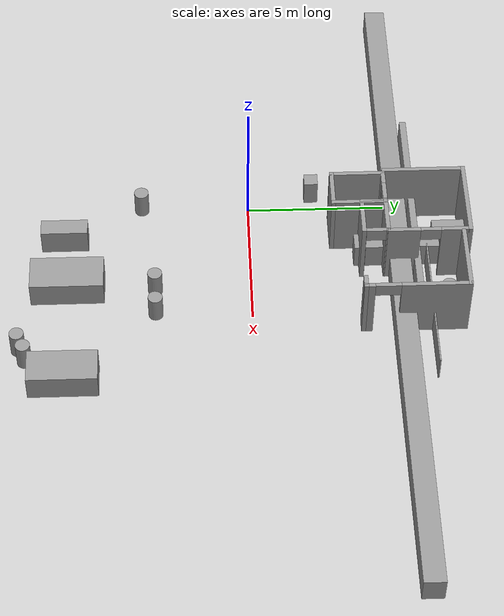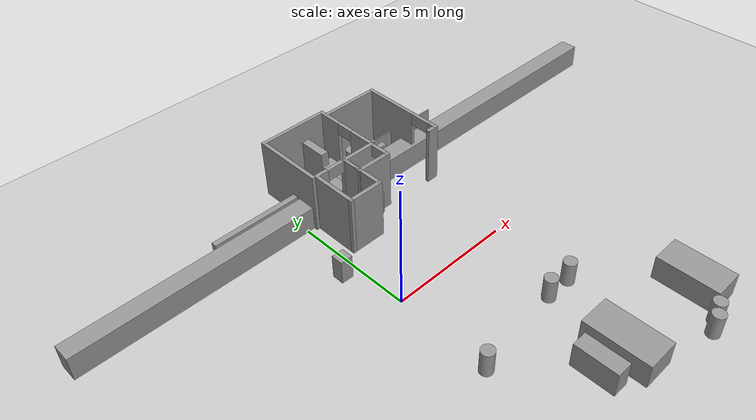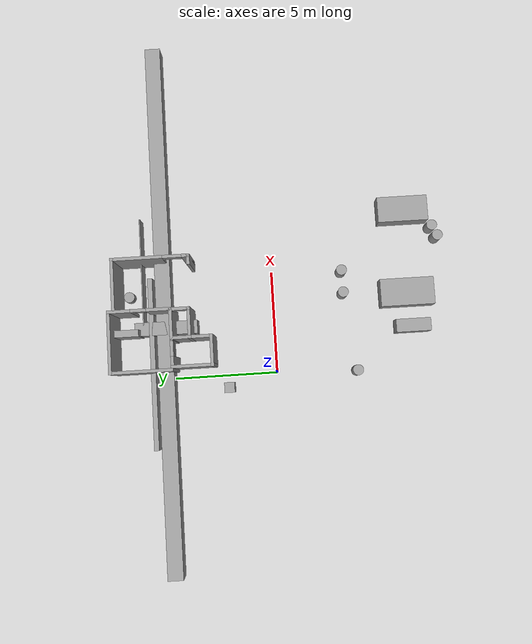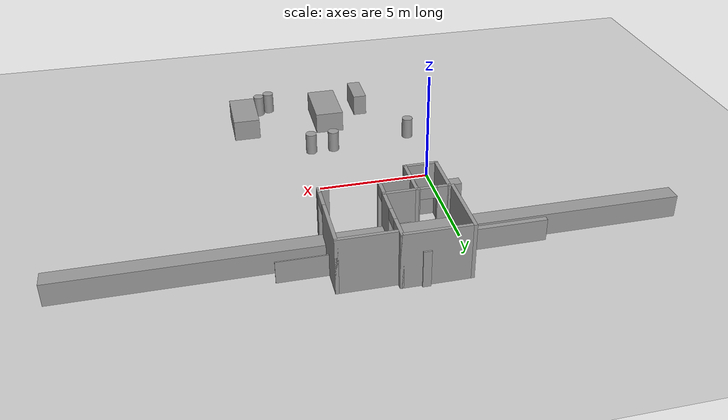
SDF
<sdf version="1.9">
 <world name="default">
  <model name="ground_plane">
   <static>true</static>
   <link name="link">
    <collision name="collision">
     <geometry><plane><normal>0 0 1</normal><size>100 100</size></plane></geometry>
     <surface><friction><ode><mu>100</mu><mu2>50</mu2></ode></friction></surface>
    </collision>
    <visual name="visual">
     <cast_shadows>false</cast_shadows>
     <geometry><plane><normal>0 0 1</normal><size>100 100</size></plane></geometry>
     <material>
      <script><uri>file://media/materials/scripts/gazebo.material</uri><name>Gazebo/Grey</name></script>
     </material>
    </visual>
   </link>
  </model>
  <model name="cma_dispensa">
   <pose>2.5258400000000001 4.4011899999999997 0 0 0 0</pose>
   <link name="Wall_5">
    <collision name="Wall_5_Collision">
     <geometry><box><size>1 0.14999999999999999 2.5</size></box></geometry>
     <pose>0 0 1.25 0 0 0</pose>
    </collision>
    <visual name="Wall_5_Visual">
     <pose>0 0 1.25 0 0 0</pose>
     <geometry><box><size>1 0.14999999999999999 2.5</size></box></geometry>
     <material>
      <script><uri>file://media/materials/scripts/gazebo.material</uri><name>Gazebo/Grey</name></script>
      <ambient>1 1 1 1</ambient>
     </material>
    </visual>
    <pose>-0.67500000000000004 0 0 0 0 1.5708</pose>
   </link>
   <link name="Wall_6">
    <collision name="Wall_6_Collision">
     <geometry><box><size>1.5 0.14999999999999999 2.5</size></box></geometry>
     <pose>0 0 1.25 0 0 0</pose>
    </collision>
    <visual name="Wall_6_Visual">
     <pose>0 0 1.25 0 0 0</pose>
     <geometry><box><size>1.5 0.14999999999999999 2.5</size></box></geometry>
     <material>
      <script><uri>file://media/materials/scripts/gazebo.material</uri><name>Gazebo/Grey</name></script>
      <ambient>1 1 1 1</ambient>
     </material>
    </visual>
    <pose>0 0.42499999999999999 0 0 0 0</pose>
   </link>
   <link name="Wall_7">
    <pose>0.67500000000000004 0 0 0 0 -1.5708</pose>
    <visual name="Wall_7_Visual_0">
     <pose>-0.42749999999999999 0 1.25 0 0 0</pose>
     <geometry><box><size>0.14499999999999999 0.14999999999999999 2.5</size></box></geometry>
     <material>
      <script><uri>file://media/materials/scripts/gazebo.material</uri><name>Gazebo/Grey</name></script>
      <ambient>1 1 1 1</ambient>
     </material>
    </visual>
    <collision name="Wall_7_Collision_0">
     <geometry><box><size>0.14499999999999999 0.14999999999999999 2.5</size></box></geometry>
     <pose>-0.42749999999999999 0 1.25 0 0 0</pose>
    </collision>
    <visual name="Wall_7_Visual_1">
     <pose>0.42249999999999999 0 1.25 0 0 0</pose>
     <geometry><box><size>0.155 0.14999999999999999 2.5</size></box></geometry>
     <material>
      <script><uri>file://media/materials/scripts/gazebo.material</uri><name>Gazebo/Grey</name></script>
      <ambient>1 1 1 1</ambient>
     </material>
    </visual>
    <collision name="Wall_7_Collision_1">
     <geometry><box><size>0.155 0.14999999999999999 2.5</size></box></geometry>
     <pose>0.42249999999999999 0 1.25 0 0 0</pose>
    </collision>
    <visual name="Wall_7_Visual_2">
     <pose>-0.0050000000000000001 0 2.25 0 0 0</pose>
     <geometry><box><size>0.69999999999999996 0.14999999999999999 0.5</size></box></geometry>
     <material>
      <script><uri>file://media/materials/scripts/gazebo.material</uri><name>Gazebo/Grey</name></script>
      <ambient>1 1 1 1</ambient>
     </material>
    </visual>
    <collision name="Wall_7_Collision_2">
     <geometry><box><size>0.69999999999999996 0.14999999999999999 0.5</size></box></geometry>
     <pose>-0.0050000000000000001 0 2.25 0 0 0</pose>
    </collision>
   </link>
   <link name="Wall_8">
    <collision name="Wall_8_Collision">
     <geometry><box><size>1.5 0.14999999999999999 2.5</size></box></geometry>
     <pose>0 0 1.25 0 0 0</pose>
    </collision>
    <visual name="Wall_8_Visual">
     <pose>0 0 1.25 0 0 0</pose>
     <geometry><box><size>1.5 0.14999999999999999 2.5</size></box></geometry>
     <material>
      <script><uri>file://media/materials/scripts/gazebo.material</uri><name>Gazebo/Grey</name></script>
      <ambient>1 1 1 1</ambient>
     </material>
    </visual>
    <pose>0 -0.42499999999999999 0 0 0 3.1415899999999999</pose>
   </link>
   <static>true</static>
  </model>
  <model name="cma_banheiro_e">
   <pose>1.1835800000000001 3.89879 0 0 0 0</pose>
   <link name="Wall_10">
    <collision name="Wall_10_Collision">
     <geometry><box><size>1.5 0.14999999999999999 2.5</size></box></geometry>
     <pose>0 0 1.25 0 0 0</pose>
    </collision>
    <visual name="Wall_10_Visual">
     <pose>0 0 1.25 0 0 0</pose>
     <geometry><box><size>1.5 0.14999999999999999 2.5</size></box></geometry>
     <material>
      <script><uri>file://media/materials/scripts/gazebo.material</uri><name>Gazebo/Grey</name></script>
      <ambient>1 1 1 1</ambient>
     </material>
    </visual>
    <pose>0 -0.92500000000000004 0 0 0 3.1415899999999999</pose>
   </link>
   <link name="Wall_11">
    <collision name="Wall_11_Collision">
     <geometry><box><size>2 0.14999999999999999 2.5</size></box></geometry>
     <pose>0 0 1.25 0 0 0</pose>
    </collision>
    <visual name="Wall_11_Visual">
     <pose>0 0 1.25 0 0 0</pose>
     <geometry><box><size>2 0.14999999999999999 2.5</size></box></geometry>
     <material>
      <script><uri>file://media/materials/scripts/gazebo.material</uri><name>Gazebo/Grey</name></script>
      <ambient>1 1 1 1</ambient>
     </material>
    </visual>
    <pose>-0.67500000000000004 0 0 0 0 1.5708</pose>
   </link>
   <link name="Wall_12">
    <pose>0 0.92500000000000004 0 0 0 0</pose>
    <visual name="Wall_12_Visual_0">
     <pose>-0.46250000000000002 0 1.25 0 0 0</pose>
     <geometry><box><size>0.57499999999999996 0.14999999999999999 2.5</size></box></geometry>
     <material>
      <script><uri>file://media/materials/scripts/gazebo.material</uri><name>Gazebo/Grey</name></script>
      <ambient>1 1 1 1</ambient>
     </material>
    </visual>
    <collision name="Wall_12_Collision_0">
     <geometry><box><size>0.57499999999999996 0.14999999999999999 2.5</size></box></geometry>
     <pose>-0.46250000000000002 0 1.25 0 0 0</pose>
    </collision>
    <visual name="Wall_12_Visual_1">
     <pose>0.64749999999999996 0 1.25 0 0 0</pose>
     <geometry><box><size>0.20499999999999999 0.14999999999999999 2.5</size></box></geometry>
     <material>
      <script><uri>file://media/materials/scripts/gazebo.material</uri><name>Gazebo/Grey</name></script>
      <ambient>1 1 1 1</ambient>
     </material>
    </visual>
    <collision name="Wall_12_Collision_1">
     <geometry><box><size>0.20499999999999999 0.14999999999999999 2.5</size></box></geometry>
     <pose>0.64749999999999996 0 1.25 0 0 0</pose>
    </collision>
    <visual name="Wall_12_Visual_2">
     <pose>0.185 0 2.25 0 0 0</pose>
     <geometry><box><size>0.71999999999999997 0.14999999999999999 0.5</size></box></geometry>
     <material>
      <script><uri>file://media/materials/scripts/gazebo.material</uri><name>Gazebo/Grey</name></script>
      <ambient>1 1 1 1</ambient>
     </material>
    </visual>
    <collision name="Wall_12_Collision_2">
     <geometry><box><size>0.71999999999999997 0.14999999999999999 0.5</size></box></geometry>
     <pose>0.185 0 2.25 0 0 0</pose>
    </collision>
   </link>
   <link name="Wall_13">
    <collision name="Wall_13_Collision">
     <geometry><box><size>2 0.14999999999999999 2.5</size></box></geometry>
     <pose>0 0 1.25 0 0 0</pose>
    </collision>
    <visual name="Wall_13_Visual">
     <pose>0 0 1.25 0 0 0</pose>
     <geometry><box><size>2 0.14999999999999999 2.5</size></box></geometry>
     <material>
      <script><uri>file://media/materials/scripts/gazebo.material</uri><name>Gazebo/Grey</name></script>
      <ambient>1 1 1 1</ambient>
     </material>
    </visual>
    <pose>0.67500000000000004 0 0 0 0 -1.5708</pose>
   </link>
   <static>true</static>
  </model>
  <model name="cma_qe">
   <pose>1.79922 6.3014200000000002 0 0 0 0</pose>
   <link name="Wall_15">
    <collision name="Wall_15_Collision">
     <geometry><box><size>3 0.14999999999999999 2.5</size></box></geometry>
     <pose>0 0 1.25 0 0 0</pose>
    </collision>
    <visual name="Wall_15_Visual">
     <pose>0 0 1.25 0 0 0</pose>
     <geometry><box><size>3 0.14999999999999999 2.5</size></box></geometry>
     <material>
      <script><uri>file://media/materials/scripts/gazebo.material</uri><name>Gazebo/Grey</name></script>
      <ambient>1 1 1 1</ambient>
     </material>
    </visual>
    <pose>-1.425 0 0 0 0 1.5708</pose>
   </link>
   <link name="Wall_16">
    <collision name="Wall_16_Collision">
     <geometry><box><size>3 0.14999999999999999 2.5</size></box></geometry>
     <pose>0 0 1.25 0 0 0</pose>
    </collision>
    <visual name="Wall_16_Visual">
     <pose>0 0 1.25 0 0 0</pose>
     <geometry><box><size>3 0.14999999999999999 2.5</size></box></geometry>
     <material>
      <script><uri>file://media/materials/scripts/gazebo.material</uri><name>Gazebo/Grey</name></script>
      <ambient>1 1 1 1</ambient>
     </material>
    </visual>
    <pose>0 1.425 0 0 0 0</pose>
   </link>
   <link name="Wall_17">
    <pose>1.425 0 0 0 0 -1.5708</pose>
    <visual name="Wall_17_Visual_0">
     <pose>-0.94499999999999995 0 1.25 0 0 0</pose>
     <geometry><box><size>1.1100000000000001 0.14999999999999999 2.5</size></box></geometry>
     <material>
      <script><uri>file://media/materials/scripts/gazebo.material</uri><name>Gazebo/Grey</name></script>
      <ambient>1 1 1 1</ambient>
     </material>
    </visual>
    <collision name="Wall_17_Collision_0">
     <geometry><box><size>1.1100000000000001 0.14999999999999999 2.5</size></box></geometry>
     <pose>-0.94499999999999995 0 1.25 0 0 0</pose>
    </collision>
    <visual name="Wall_17_Visual_1">
     <pose>0.92000000000000004 0 1.25 0 0 0</pose>
     <geometry><box><size>1.1599999999999999 0.14999999999999999 2.5</size></box></geometry>
     <material>
      <script><uri>file://media/materials/scripts/gazebo.material</uri><name>Gazebo/Grey</name></script>
      <ambient>1 1 1 1</ambient>
     </material>
    </visual>
    <collision name="Wall_17_Collision_1">
     <geometry><box><size>1.1599999999999999 0.14999999999999999 2.5</size></box></geometry>
     <pose>0.92000000000000004 0 1.25 0 0 0</pose>
    </collision>
    <visual name="Wall_17_Visual_2">
     <pose>-0.025000000000000001 0 2.25 0 0 0</pose>
     <geometry><box><size>0.72999999999999998 0.14999999999999999 0.5</size></box></geometry>
     <material>
      <script><uri>file://media/materials/scripts/gazebo.material</uri><name>Gazebo/Grey</name></script>
      <ambient>1 1 1 1</ambient>
     </material>
    </visual>
    <collision name="Wall_17_Collision_2">
     <geometry><box><size>0.72999999999999998 0.14999999999999999 0.5</size></box></geometry>
     <pose>-0.025000000000000001 0 2.25 0 0 0</pose>
    </collision>
   </link>
   <static>true</static>
  </model>
  <model name="cma_area2">
   <pose>4.5227500000000003 5.6786199999999996 0 0 0 0</pose>
   <link name="Wall_23">
    <collision name="Wall_23_Collision">
     <geometry><box><size>2.5 0.14999999999999999 2.5</size></box></geometry>
     <pose>0 0 1.25 0 0 0</pose>
    </collision>
    <visual name="Wall_23_Visual">
     <pose>0 0 1.25 0 0 0</pose>
     <geometry><box><size>2.5 0.14999999999999999 2.5</size></box></geometry>
     <material>
      <script><uri>file://media/materials/scripts/gazebo.material</uri><name>Gazebo/Grey</name></script>
      <ambient>1 1 1 1</ambient>
     </material>
    </visual>
    <pose>0 1.8 0 0 0 0</pose>
   </link>
   <link name="Wall_24">
    <pose>1.175 0 0 0 0 -1.5708</pose>
    <visual name="Wall_24_Visual_0">
     <pose>-0.64249999999999996 0 1.25 0 0 0</pose>
     <geometry><box><size>2.4649999999999999 0.14999999999999999 2.5</size></box></geometry>
     <material>
      <script><uri>file://media/materials/scripts/gazebo.material</uri><name>Gazebo/Grey</name></script>
      <ambient>1 1 1 1</ambient>
     </material>
    </visual>
    <collision name="Wall_24_Collision_0">
     <geometry><box><size>2.4649999999999999 0.14999999999999999 2.5</size></box></geometry>
     <pose>-0.64249999999999996 0 1.25 0 0 0</pose>
    </collision>
    <visual name="Wall_24_Visual_1">
     <pose>1.6825000000000001 0 1.25 0 0 0</pose>
     <geometry><box><size>0.38500000000000001 0.14999999999999999 2.5</size></box></geometry>
     <material>
      <script><uri>file://media/materials/scripts/gazebo.material</uri><name>Gazebo/Grey</name></script>
      <ambient>1 1 1 1</ambient>
     </material>
    </visual>
    <collision name="Wall_24_Collision_1">
     <geometry><box><size>0.38500000000000001 0.14999999999999999 2.5</size></box></geometry>
     <pose>1.6825000000000001 0 1.25 0 0 0</pose>
    </collision>
    <visual name="Wall_24_Visual_2">
     <pose>1.04 0 2.25 0 0 0</pose>
     <geometry><box><size>0.90000000000000002 0.14999999999999999 0.5</size></box></geometry>
     <material>
      <script><uri>file://media/materials/scripts/gazebo.material</uri><name>Gazebo/Grey</name></script>
      <ambient>1 1 1 1</ambient>
     </material>
    </visual>
    <collision name="Wall_24_Collision_2">
     <geometry><box><size>0.90000000000000002 0.14999999999999999 0.5</size></box></geometry>
     <pose>1.04 0 2.25 0 0 0</pose>
    </collision>
   </link>
   <link name="Wall_25">
    <collision name="Wall_25_Collision">
     <geometry><box><size>0.5 0.14999999999999999 2.5</size></box></geometry>
     <pose>0 0 1.25 0 0 0</pose>
    </collision>
    <visual name="Wall_25_Visual">
     <pose>0 0 1.25 0 0 0</pose>
     <geometry><box><size>0.5 0.14999999999999999 2.5</size></box></geometry>
     <material>
      <script><uri>file://media/materials/scripts/gazebo.material</uri><name>Gazebo/Grey</name></script>
      <ambient>1 1 1 1</ambient>
     </material>
    </visual>
    <pose>1 -1.8 0 0 0 3.1415899999999999</pose>
   </link>
   <static>true</static>
  </model>
  <model name="cma_gaveteiro">
   <link name="link_0">
    <pose>0 3.9999999999999998e-06 0 0 0 0</pose>
    <inertial>
     <mass>0.245086</mass>
     <inertia>
      <ixx>0.025418</ixx>
      <ixy>0</ixy>
      <ixz>0</ixz>
      <iyy>0.025441100000000001</iyy>
      <iyz>0</iyz>
      <izz>0.010011300000000001</izz>
     </inertia>
    </inertial>
    <visual name="visual">
     <geometry><box><size>0.49565700000000001 0.49449100000000001 1</size></box></geometry>
     <material>
      <lighting>true</lighting>
      <script><uri>file://media/materials/scripts/gazebo.material</uri><name>Gazebo/Grey</name></script>
      <ambient>0.300000012 0.300000012 0.300000012 1</ambient>
      <diffuse>0.699999988 0.699999988 0.699999988 1</diffuse>
      <specular>0.00999999978 0.00999999978 0.00999999978 1</specular>
      <emissive>0 0 0 1</emissive>
     </material>
    </visual>
    <collision name="collision">
     <geometry><box><size>0.49565700000000001 0.49449100000000001 1</size></box></geometry>
     <surface>
      <friction>
       <ode><mu>1</mu><mu2>1</mu2><fdir1>0 0 0</fdir1><slip1>0</slip1><slip2>0</slip2></ode>
       <torsional>
        <coefficient>1</coefficient>
        <patch_radius>0</patch_radius>
        <surface_radius>0</surface_radius>
        <use_patch_radius>true</use_patch_radius>
        <ode><slip>0</slip></ode>
       </torsional>
      </friction>
      <bounce><restitution_coefficient>0</restitution_coefficient><threshold>1000000</threshold></bounce>
      <contact>
       <collide_without_contact>false</collide_without_contact>
       <collide_without_contact_bitmask>1</collide_without_contact_bitmask>
       <collide_bitmask>1</collide_bitmask>
       <ode>
        <soft_cfm>0</soft_cfm>
        <soft_erp>0.20000000000000001</soft_erp>
        <kp>10000000000000</kp>
        <kd>1</kd>
        <max_vel>0.01</max_vel>
        <min_depth>0</min_depth>
       </ode>
       <bullet>
        <split_impulse>true</split_impulse>
        <split_impulse_penetration_threshold>-0.01</split_impulse_penetration_threshold>
        <soft_cfm>0</soft_cfm>
        <soft_erp>0.20000000000000001</soft_erp>
        <kp>10000000000000</kp>
        <kd>1</kd>
       </bullet>
      </contact>
     </surface>
    </collision>
   </link>
   <static>false</static>
   <pose>-0.59198799999999996 2.3262 0.5 -9.9999999999999974e-07 -9.9999999999999995e-07 0.00048399999999999995</pose>
  </model>
  <model name="cma_sofa_ch2">
   <link name="link_0">
    <pose>7.5415200000000002 -9.0606100000000005 0.5 0 0 0</pose>
    <inertial>
     <mass>3.05287</mass>
     <inertia>
      <ixx>1.79053</ixx>
      <ixy>0</ixy>
      <ixz>0</ixz>
      <iyy>0.64708900000000003</iyy>
      <iyz>0</iyz>
      <izz>1.9288099999999999</izz>
     </inertia>
    </inertial>
    <visual name="visual">
     <geometry><box><size>1.2423500000000001 2.45729 1</size></box></geometry>
     <material>
      <lighting>true</lighting>
      <script><uri>file://media/materials/scripts/gazebo.material</uri><name>Gazebo/Grey</name></script>
      <ambient>0.300000012 0.300000012 0.300000012 1</ambient>
      <diffuse>0.699999988 0.699999988 0.699999988 1</diffuse>
      <specular>0.00999999978 0.00999999978 0.00999999978 1</specular>
      <emissive>0 0 0 1</emissive>
     </material>
    </visual>
    <collision name="collision">
     <geometry><box><size>1.2423500000000001 2.45729 1</size></box></geometry>
     <surface>
      <friction>
       <ode><mu>1</mu><mu2>1</mu2><fdir1>0 0 0</fdir1><slip1>0</slip1><slip2>0</slip2></ode>
       <torsional>
        <coefficient>1</coefficient>
        <patch_radius>0</patch_radius>
        <surface_radius>0</surface_radius>
        <use_patch_radius>true</use_patch_radius>
        <ode><slip>0</slip></ode>
       </torsional>
      </friction>
      <bounce><restitution_coefficient>0</restitution_coefficient><threshold>1000000</threshold></bounce>
      <contact>
       <collide_without_contact>false</collide_without_contact>
       <collide_without_contact_bitmask>1</collide_without_contact_bitmask>
       <collide_bitmask>1</collide_bitmask>
       <ode>
        <soft_cfm>0</soft_cfm>
        <soft_erp>0.20000000000000001</soft_erp>
        <kp>10000000000000</kp>
        <kd>1</kd>
        <max_vel>0.01</max_vel>
        <min_depth>0</min_depth>
       </ode>
       <bullet>
        <split_impulse>true</split_impulse>
        <split_impulse_penetration_threshold>-0.01</split_impulse_penetration_threshold>
        <soft_cfm>0</soft_cfm>
        <soft_erp>0.20000000000000001</soft_erp>
        <kp>10000000000000</kp>
        <kd>1</kd>
       </bullet>
      </contact>
     </surface>
    </collision>
   </link>
   <model name="cma_armarioL">
    <link name="link_0">
     <pose>3.6622599999999998 -6.1673499999999999 0.5 0 0 0</pose>
     <inertial>
      <mass>1.0482100000000001</mass>
      <inertia>
       <ixx>0.33087299999999997</ixx>
       <ixy>0</ixy>
       <ixz>0</ixz>
       <iyy>0.121777</iyy>
       <iyz>0</iyz>
       <izz>0.277949</izz>
      </inertia>
     </inertial>
     <visual name="visual">
      <geometry><box><size>0.62779200000000002 1.6697200000000001 1</size></box></geometry>
      <material>
       <lighting>true</lighting>
       <script><uri>file://media/materials/scripts/gazebo.material</uri><name>Gazebo/Grey</name></script>
       <ambient>0.300000012 0.300000012 0.300000012 1</ambient>
       <diffuse>0.699999988 0.699999988 0.699999988 1</diffuse>
       <specular>0.00999999978 0.00999999978 0.00999999978 1</specular>
       <emissive>0 0 0 1</emissive>
      </material>
     </visual>
     <collision name="collision">
      <geometry><box><size>0.62779200000000002 1.6697200000000001 1</size></box></geometry>
      <surface>
       <friction>
        <ode><mu>1</mu><mu2>1</mu2><fdir1>0 0 0</fdir1><slip1>0</slip1><slip2>0</slip2></ode>
        <torsional>
         <coefficient>1</coefficient>
         <patch_radius>0</patch_radius>
         <surface_radius>0</surface_radius>
         <use_patch_radius>true</use_patch_radius>
         <ode><slip>0</slip></ode>
        </torsional>
       </friction>
       <bounce><restitution_coefficient>0</restitution_coefficient><threshold>1000000</threshold></bounce>
       <contact>
        <collide_without_contact>false</collide_without_contact>
        <collide_without_contact_bitmask>1</collide_without_contact_bitmask>
        <collide_bitmask>1</collide_bitmask>
        <ode>
         <soft_cfm>0</soft_cfm>
         <soft_erp>0.20000000000000001</soft_erp>
         <kp>10000000000000</kp>
         <kd>1</kd>
         <max_vel>0.01</max_vel>
         <min_depth>0</min_depth>
        </ode>
        <bullet>
         <split_impulse>true</split_impulse>
         <split_impulse_penetration_threshold>-0.01</split_impulse_penetration_threshold>
         <soft_cfm>0</soft_cfm>
         <soft_erp>0.20000000000000001</soft_erp>
         <kp>10000000000000</kp>
         <kd>1</kd>
        </bullet>
       </contact>
      </surface>
     </collision>
    </link>
    <static>false</static>
    <pose>-1.9180299999999999 -2.9201100000000002 0.5 0 0 0</pose>
   </model>
   <model name="cma_cesto">
    <link name="link_1">
     <pose>-0.32965899999999998 -1.55494 0 0 0 0</pose>
     <inertial>
      <mass>0.267897</mass>
      <inertia>
       <ixx>0.026810199999999999</ixx>
       <ixy>0</ixy>
       <ixz>0</ixz>
       <iyy>0.026810199999999999</iyy>
       <iyz>0</iyz>
       <izz>0.0089711099999999992</izz>
      </inertia>
     </inertial>
     <visual name="visual">
      <geometry><cylinder><radius>0.25879200000000002</radius><length>1</length></cylinder></geometry>
      <material>
       <lighting>true</lighting>
       <script><uri>file://media/materials/scripts/gazebo.material</uri><name>Gazebo/Grey</name></script>
       <ambient>0.300000012 0.300000012 0.300000012 1</ambient>
       <diffuse>0.699999988 0.699999988 0.699999988 1</diffuse>
       <specular>0.00999999978 0.00999999978 0.00999999978 1</specular>
       <emissive>0 0 0 1</emissive>
      </material>
     </visual>
     <collision name="collision">
      <geometry><cylinder><radius>0.25879200000000002</radius><length>1</length></cylinder></geometry>
      <surface>
       <friction>
        <ode><mu>1</mu><mu2>1</mu2><fdir1>0 0 0</fdir1><slip1>0</slip1><slip2>0</slip2></ode>
        <torsional>
         <coefficient>1</coefficient>
         <patch_radius>0</patch_radius>
         <surface_radius>0</surface_radius>
         <use_patch_radius>true</use_patch_radius>
         <ode><slip>0</slip></ode>
        </torsional>
       </friction>
       <bounce><restitution_coefficient>0</restitution_coefficient><threshold>1000000</threshold></bounce>
       <contact>
        <collide_without_contact>false</collide_without_contact>
        <collide_without_contact_bitmask>1</collide_without_contact_bitmask>
        <collide_bitmask>1</collide_bitmask>
        <ode>
         <soft_cfm>0</soft_cfm>
         <soft_erp>0.20000000000000001</soft_erp>
         <kp>10000000000000</kp>
         <kd>1</kd>
         <max_vel>0.01</max_vel>
         <min_depth>0</min_depth>
        </ode>
        <bullet>
         <split_impulse>true</split_impulse>
         <split_impulse_penetration_threshold>-0.01</split_impulse_penetration_threshold>
         <soft_cfm>0</soft_cfm>
         <soft_erp>0.20000000000000001</soft_erp>
         <kp>10000000000000</kp>
         <kd>1</kd>
        </bullet>
       </contact>
      </surface>
     </collision>
    </link>
    <static>false</static>
    <pose>6.9793500000000002 -8.8850899999999999 0.5 0 0 0</pose>
   </model>
   <model name="cma_cesto_0">
    <link name="link_1">
     <pose>-0.32965899999999998 -1.55494 0 0 0 0</pose>
     <inertial>
      <mass>0.267897</mass>
      <inertia>
       <ixx>0.026810199999999999</ixx>
       <ixy>0</ixy>
       <ixz>0</ixz>
       <iyy>0.026810199999999999</iyy>
       <iyz>0</iyz>
       <izz>0.0089711099999999992</izz>
      </inertia>
     </inertial>
     <visual name="visual">
      <geometry><cylinder><radius>0.25879200000000002</radius><length>1</length></cylinder></geometry>
      <material>
       <lighting>true</lighting>
       <script><uri>file://media/materials/scripts/gazebo.material</uri><name>Gazebo/Grey</name></script>
       <ambient>0.300000012 0.300000012 0.300000012 1</ambient>
       <diffuse>0.699999988 0.699999988 0.699999988 1</diffuse>
       <specular>0.00999999978 0.00999999978 0.00999999978 1</specular>
       <emissive>0 0 0 1</emissive>
      </material>
     </visual>
     <collision name="collision">
      <geometry><cylinder><radius>0.25879200000000002</radius><length>1</length></cylinder></geometry>
      <surface>
       <friction>
        <ode><mu>1</mu><mu2>1</mu2><fdir1>0 0 0</fdir1><slip1>0</slip1><slip2>0</slip2></ode>
        <torsional>
         <coefficient>1</coefficient>
         <patch_radius>0</patch_radius>
         <surface_radius>0</surface_radius>
         <use_patch_radius>true</use_patch_radius>
         <ode><slip>0</slip></ode>
        </torsional>
       </friction>
       <bounce><restitution_coefficient>0</restitution_coefficient><threshold>1000000</threshold></bounce>
       <contact>
        <collide_without_contact>false</collide_without_contact>
        <collide_without_contact_bitmask>1</collide_without_contact_bitmask>
        <collide_bitmask>1</collide_bitmask>
        <ode>
         <soft_cfm>0</soft_cfm>
         <soft_erp>0.20000000000000001</soft_erp>
         <kp>10000000000000</kp>
         <kd>1</kd>
         <max_vel>0.01</max_vel>
         <min_depth>0</min_depth>
        </ode>
        <bullet>
         <split_impulse>true</split_impulse>
         <split_impulse_penetration_threshold>-0.01</split_impulse_penetration_threshold>
         <soft_cfm>0</soft_cfm>
         <soft_erp>0.20000000000000001</soft_erp>
         <kp>10000000000000</kp>
         <kd>1</kd>
        </bullet>
       </contact>
      </surface>
     </collision>
    </link>
    <static>false</static>
    <pose>6.4663000000000004 -9.1192200000000003 0.5 0 0 0</pose>
   </model>
   <model name="cma_cesto_1">
    <link name="link_1">
     <pose>-0.32965899999999998 -1.55494 0 0 0 0</pose>
     <inertial>
      <mass>0.267897</mass>
      <inertia>
       <ixx>0.026810199999999999</ixx>
       <ixy>0</ixy>
       <ixz>0</ixz>
       <iyy>0.026810199999999999</iyy>
       <iyz>0</iyz>
       <izz>0.0089711099999999992</izz>
      </inertia>
     </inertial>
     <visual name="visual">
      <geometry><cylinder><radius>0.25879200000000002</radius><length>1</length></cylinder></geometry>
      <material>
       <lighting>true</lighting>
       <script><uri>file://media/materials/scripts/gazebo.material</uri><name>Gazebo/Grey</name></script>
       <ambient>0.300000012 0.300000012 0.300000012 1</ambient>
       <diffuse>0.699999988 0.699999988 0.699999988 1</diffuse>
       <specular>0.00999999978 0.00999999978 0.00999999978 1</specular>
       <emissive>0 0 0 1</emissive>
      </material>
     </visual>
     <collision name="collision">
      <geometry><cylinder><radius>0.25879200000000002</radius><length>1</length></cylinder></geometry>
      <surface>
       <friction>
        <ode><mu>1</mu><mu2>1</mu2><fdir1>0 0 0</fdir1><slip1>0</slip1><slip2>0</slip2></ode>
        <torsional>
         <coefficient>1</coefficient>
         <patch_radius>0</patch_radius>
         <surface_radius>0</surface_radius>
         <use_patch_radius>true</use_patch_radius>
         <ode><slip>0</slip></ode>
        </torsional>
       </friction>
       <bounce><restitution_coefficient>0</restitution_coefficient><threshold>1000000</threshold></bounce>
       <contact>
        <collide_without_contact>false</collide_without_contact>
        <collide_without_contact_bitmask>1</collide_without_contact_bitmask>
        <collide_bitmask>1</collide_bitmask>
        <ode>
         <soft_cfm>0</soft_cfm>
         <soft_erp>0.20000000000000001</soft_erp>
         <kp>10000000000000</kp>
         <kd>1</kd>
         <max_vel>0.01</max_vel>
         <min_depth>0</min_depth>
        </ode>
        <bullet>
         <split_impulse>true</split_impulse>
         <split_impulse_penetration_threshold>-0.01</split_impulse_penetration_threshold>
         <soft_cfm>0</soft_cfm>
         <soft_erp>0.20000000000000001</soft_erp>
         <kp>10000000000000</kp>
         <kd>1</kd>
        </bullet>
       </contact>
      </surface>
     </collision>
    </link>
    <static>false</static>
    <pose>0.091229000000000005 -4.78918 0.5 0 0 0</pose>
   </model>
   <model name="cma_cesto_2">
    <link name="link_1">
     <pose>-0.32965899999999998 -1.55494 0 0 0 0</pose>
     <inertial>
      <mass>0.267897</mass>
      <inertia>
       <ixx>0.026810199999999999</ixx>
       <ixy>0</ixy>
       <ixz>0</ixz>
       <iyy>0.026810199999999999</iyy>
       <iyz>0</iyz>
       <izz>0.0089711099999999992</izz>
      </inertia>
     </inertial>
     <visual name="visual">
      <geometry><cylinder><radius>0.25879200000000002</radius><length>1</length></cylinder></geometry>
      <material>
       <lighting>true</lighting>
       <script><uri>file://media/materials/scripts/gazebo.material</uri><name>Gazebo/Grey</name></script>
       <ambient>0.300000012 0.300000012 0.300000012 1</ambient>
       <diffuse>0.699999988 0.699999988 0.699999988 1</diffuse>
       <specular>0.00999999978 0.00999999978 0.00999999978 1</specular>
       <emissive>0 0 0 1</emissive>
      </material>
     </visual>
     <collision name="collision">
      <geometry><cylinder><radius>0.25879200000000002</radius><length>1</length></cylinder></geometry>
      <surface>
       <friction>
        <ode><mu>1</mu><mu2>1</mu2><fdir1>0 0 0</fdir1><slip1>0</slip1><slip2>0</slip2></ode>
        <torsional>
         <coefficient>1</coefficient>
         <patch_radius>0</patch_radius>
         <surface_radius>0</surface_radius>
         <use_patch_radius>true</use_patch_radius>
         <ode><slip>0</slip></ode>
        </torsional>
       </friction>
       <bounce><restitution_coefficient>0</restitution_coefficient><threshold>1000000</threshold></bounce>
       <contact>
        <collide_without_contact>false</collide_without_contact>
        <collide_without_contact_bitmask>1</collide_without_contact_bitmask>
        <collide_bitmask>1</collide_bitmask>
        <ode>
         <soft_cfm>0</soft_cfm>
         <soft_erp>0.20000000000000001</soft_erp>
         <kp>10000000000000</kp>
         <kd>1</kd>
         <max_vel>0.01</max_vel>
         <min_depth>0</min_depth>
        </ode>
        <bullet>
         <split_impulse>true</split_impulse>
         <split_impulse_penetration_threshold>-0.01</split_impulse_penetration_threshold>
         <soft_cfm>0</soft_cfm>
         <soft_erp>0.20000000000000001</soft_erp>
         <kp>10000000000000</kp>
         <kd>1</kd>
        </bullet>
       </contact>
      </surface>
     </collision>
    </link>
    <static>false</static>
    <pose>5.00434 -4.3001500000000004 0.5 0 0 0</pose>
   </model>
   <model name="cma_cesto_3">
    <link name="link_1">
     <pose>-0.32965899999999998 -1.55494 0 0 0 0</pose>
     <inertial>
      <mass>0.267897</mass>
      <inertia>
       <ixx>0.026810199999999999</ixx>
       <ixy>0</ixy>
       <ixz>0</ixz>
       <iyy>0.026810199999999999</iyy>
       <iyz>0</iyz>
       <izz>0.0089711099999999992</izz>
      </inertia>
     </inertial>
     <visual name="visual">
      <geometry><cylinder><radius>0.25879200000000002</radius><length>1</length></cylinder></geometry>
      <material>
       <lighting>true</lighting>
       <script><uri>file://media/materials/scripts/gazebo.material</uri><name>Gazebo/Grey</name></script>
       <ambient>0.300000012 0.300000012 0.300000012 1</ambient>
       <diffuse>0.699999988 0.699999988 0.699999988 1</diffuse>
       <specular>0.00999999978 0.00999999978 0.00999999978 1</specular>
       <emissive>0 0 0 1</emissive>
      </material>
     </visual>
     <collision name="collision">
      <geometry><cylinder><radius>0.25879200000000002</radius><length>1</length></cylinder></geometry>
      <surface>
       <friction>
        <ode><mu>1</mu><mu2>1</mu2><fdir1>0 0 0</fdir1><slip1>0</slip1><slip2>0</slip2></ode>
        <torsional>
         <coefficient>1</coefficient>
         <patch_radius>0</patch_radius>
         <surface_radius>0</surface_radius>
         <use_patch_radius>true</use_patch_radius>
         <ode><slip>0</slip></ode>
        </torsional>
       </friction>
       <bounce><restitution_coefficient>0</restitution_coefficient><threshold>1000000</threshold></bounce>
       <contact>
        <collide_without_contact>false</collide_without_contact>
        <collide_without_contact_bitmask>1</collide_without_contact_bitmask>
        <collide_bitmask>1</collide_bitmask>
        <ode>
         <soft_cfm>0</soft_cfm>
         <soft_erp>0.20000000000000001</soft_erp>
         <kp>10000000000000</kp>
         <kd>1</kd>
         <max_vel>0.01</max_vel>
         <min_depth>0</min_depth>
        </ode>
        <bullet>
         <split_impulse>true</split_impulse>
         <split_impulse_penetration_threshold>-0.01</split_impulse_penetration_threshold>
         <soft_cfm>0</soft_cfm>
         <soft_erp>0.20000000000000001</soft_erp>
         <kp>10000000000000</kp>
         <kd>1</kd>
        </bullet>
       </contact>
      </surface>
     </collision>
    </link>
    <static>false</static>
    <pose>3.9176799999999998 -4.3154000000000003 0.5 0 0 0</pose>
   </model>
   <model name="cma_sofa_ch1">
    <link name="link_0">
     <pose>-3.9999999999999998e-06 5.0000000000000004e-06 0 0 0 0</pose>
     <inertial>
      <mass>3.5119199999999999</mass>
      <inertia>
       <ixx>2.3083100000000001</ixx>
       <ixy>0</ixy>
       <ixz>0</ixz>
       <iyy>0.81674599999999997</iyy>
       <iyz>0</iyz>
       <izz>2.5397400000000001</izz>
      </inertia>
     </inertial>
     <visual name="visual">
      <geometry><box><size>1.33823 2.62439 1</size></box></geometry>
      <material>
       <lighting>true</lighting>
       <script><uri>file://media/materials/scripts/gazebo.material</uri><name>Gazebo/Grey</name></script>
       <ambient>0.300000012 0.300000012 0.300000012 1</ambient>
       <diffuse>0.699999988 0.699999988 0.699999988 1</diffuse>
       <specular>0.00999999978 0.00999999978 0.00999999978 1</specular>
       <emissive>0 0 0 1</emissive>
      </material>
     </visual>
     <collision name="collision">
      <geometry><box><size>1.33823 2.62439 1</size></box></geometry>
      <surface>
       <friction>
        <ode><mu>1</mu><mu2>1</mu2><fdir1>0 0 0</fdir1><slip1>0</slip1><slip2>0</slip2></ode>
        <torsional>
         <coefficient>1</coefficient>
         <patch_radius>0</patch_radius>
         <surface_radius>0</surface_radius>
         <use_patch_radius>true</use_patch_radius>
         <ode><slip>0</slip></ode>
        </torsional>
       </friction>
       <bounce><restitution_coefficient>0</restitution_coefficient><threshold>1000000</threshold></bounce>
       <contact>
        <collide_without_contact>false</collide_without_contact>
        <collide_without_contact_bitmask>1</collide_without_contact_bitmask>
        <collide_bitmask>1</collide_bitmask>
        <ode>
         <soft_cfm>0</soft_cfm>
         <soft_erp>0.20000000000000001</soft_erp>
         <kp>10000000000000</kp>
         <kd>1</kd>
         <max_vel>0.01</max_vel>
         <min_depth>0</min_depth>
        </ode>
        <bullet>
         <split_impulse>true</split_impulse>
         <split_impulse_penetration_threshold>-0.01</split_impulse_penetration_threshold>
         <soft_cfm>0</soft_cfm>
         <soft_erp>0.20000000000000001</soft_erp>
         <kp>10000000000000</kp>
         <kd>1</kd>
        </bullet>
       </contact>
      </surface>
     </collision>
    </link>
    <static>false</static>
    <pose>3.4236 -8.9981600000000004 0.5 0 0 0</pose>
   </model>
   <static>false</static>
   <pose>0.11720999999999999 2.42164 0 0 0 0</pose>
  </model>
  <model name="unit_box_0">
   <pose>5.2547600000000001 6.3315000000000001 0.5 0 0 0</pose>
   <link name="link">
    <inertial>
     <mass>1</mass>
     <inertia>
      <ixx>0.16666700000000001</ixx>
      <ixy>0</ixy>
      <ixz>0</ixz>
      <iyy>0.16666700000000001</iyy>
      <iyz>0</iyz>
      <izz>0.16666700000000001</izz>
     </inertia>
    </inertial>
    <collision name="collision"><geometry><box><size>5.26044 0.0500802 1</size></box></geometry></collision>
    <visual name="visual">
     <geometry><box><size>5.26044 0.0500802 1</size></box></geometry>
     <material>
      <script><name>Gazebo/Grey</name><uri>file://media/materials/scripts/gazebo.material</uri></script>
     </material>
    </visual>
   </link>
  </model>
  <model name="cma_cesto_1">
   <link name="link_1">
    <pose>-0.32965899999999998 -1.55494 0 0 0 0</pose>
    <inertial>
     <mass>0.267897</mass>
     <inertia>
      <ixx>0.026810199999999999</ixx>
      <ixy>0</ixy>
      <ixz>0</ixz>
      <iyy>0.026810199999999999</iyy>
      <iyz>0</iyz>
      <izz>0.0089711099999999992</izz>
     </inertia>
    </inertial>
    <visual name="visual">
     <geometry><cylinder><radius>0.25879200000000002</radius><length>1</length></cylinder></geometry>
     <material>
      <lighting>true</lighting>
      <script><uri>file://media/materials/scripts/gazebo.material</uri><name>Gazebo/Grey</name></script>
      <ambient>0.300000012 0.300000012 0.300000012 1</ambient>
      <diffuse>0.699999988 0.699999988 0.699999988 1</diffuse>
      <specular>0.00999999978 0.00999999978 0.00999999978 1</specular>
      <emissive>0 0 0 1</emissive>
     </material>
    </visual>
    <collision name="collision">
     <geometry><cylinder><radius>0.25879200000000002</radius><length>1</length></cylinder></geometry>
     <surface>
      <friction>
       <ode><mu>1</mu><mu2>1</mu2><fdir1>0 0 0</fdir1><slip1>0</slip1><slip2>0</slip2></ode>
       <torsional>
        <coefficient>1</coefficient>
        <patch_radius>0</patch_radius>
        <surface_radius>0</surface_radius>
        <use_patch_radius>true</use_patch_radius>
        <ode><slip>0</slip></ode>
       </torsional>
      </friction>
      <bounce><restitution_coefficient>0</restitution_coefficient><threshold>1000000</threshold></bounce>
      <contact>
       <collide_without_contact>false</collide_without_contact>
       <collide_without_contact_bitmask>1</collide_without_contact_bitmask>
       <collide_bitmask>1</collide_bitmask>
       <ode>
        <soft_cfm>0</soft_cfm>
        <soft_erp>0.20000000000000001</soft_erp>
        <kp>10000000000000</kp>
        <kd>1</kd>
        <max_vel>0.01</max_vel>
        <min_depth>0</min_depth>
       </ode>
       <bullet>
        <split_impulse>true</split_impulse>
        <split_impulse_penetration_threshold>-0.01</split_impulse_penetration_threshold>
        <soft_cfm>0</soft_cfm>
        <soft_erp>0.20000000000000001</soft_erp>
        <kp>10000000000000</kp>
        <kd>1</kd>
       </bullet>
      </contact>
     </surface>
    </collision>
   </link>
   <static>false</static>
   <pose>4.4416200000000003 8.6170000000000009 0 0 0 0</pose>
  </model>
  <model name="unit_box_1">
   <pose>3.5591200000000001 5.3289299999999997 0.5 0 0 0</pose>
   <link name="link">
    <inertial>
     <mass>1</mass>
     <inertia>
      <ixx>0.16666700000000001</ixx>
      <ixy>0</ixy>
      <ixz>0</ixz>
      <iyy>0.16666700000000001</iyy>
      <iyz>0</iyz>
      <izz>0.16666700000000001</izz>
     </inertia>
    </inertial>
    <collision name="collision"><geometry><box><size>26.0301 0.753317 1</size></box></geometry></collision>
    <visual name="visual">
     <geometry><box><size>26.0301 0.753317 1</size></box></geometry>
     <material>
      <script><name>Gazebo/Grey</name><uri>file://media/materials/scripts/gazebo.material</uri></script>
     </material>
    </visual>
   </link>
  </model>
  <model name="unit_box_2">
   <pose>2.4435600000000002 5.2535400000000001 0.5 0 0 0</pose>
   <link name="link">
    <inertial>
     <mass>1</mass>
     <inertia>
      <ixx>0.16666700000000001</ixx>
      <ixy>0</ixy>
      <ixz>0</ixz>
      <iyy>0.16666700000000001</iyy>
      <iyz>0</iyz>
      <izz>0.16666700000000001</izz>
     </inertia>
    </inertial>
    <collision name="collision"><geometry><box><size>0.645111 3.04636 1</size></box></geometry></collision>
    <visual name="visual">
     <geometry><box><size>0.645111 3.04636 1</size></box></geometry>
     <material>
      <script><name>Gazebo/Grey</name><uri>file://media/materials/scripts/gazebo.material</uri></script>
     </material>
    </visual>
   </link>
  </model>
  <model name="unit_box_3">
   <pose>0.76307100000000005 5.9527400000000004 0.5 0 0 0</pose>
   <link name="link">
    <inertial>
     <mass>1</mass>
     <inertia>
      <ixx>0.16666700000000001</ixx>
      <ixy>0</ixy>
      <ixz>0</ixz>
      <iyy>0.16666700000000001</iyy>
      <iyz>0</iyz>
      <izz>0.16666700000000001</izz>
     </inertia>
    </inertial>
    <collision name="collision"><geometry><box><size>8.31317 0.237219 1</size></box></geometry></collision>
    <visual name="visual">
     <geometry><box><size>8.31317 0.237219 1</size></box></geometry>
     <material>
      <script><name>Gazebo/Grey</name><uri>file://media/materials/scripts/gazebo.material</uri></script>
     </material>
    </visual>
   </link>
  </model>
  <model name="unit_box_4">
   <pose>2.2454200000000002 7.1812800000000001 0.5 0 0 0</pose>
   <link name="link">
    <inertial>
     <mass>1</mass>
     <inertia>
      <ixx>0.16666700000000001</ixx>
      <ixy>0</ixy>
      <ixz>0</ixz>
      <iyy>0.16666700000000001</iyy>
      <iyz>0</iyz>
      <izz>0.16666700000000001</izz>
     </inertia>
    </inertial>
    <collision name="collision"><geometry><box><size>0.33722 1.37947 2.25592</size></box></geometry></collision>
    <visual name="visual">
     <geometry><box><size>0.33722 1.37947 2.25592</size></box></geometry>
     <material>
      <script><name>Gazebo/Grey</name><uri>file://media/materials/scripts/gazebo.material</uri></script>
     </material>
    </visual>
   </link>
  </model>
 </world>
</sdf>
